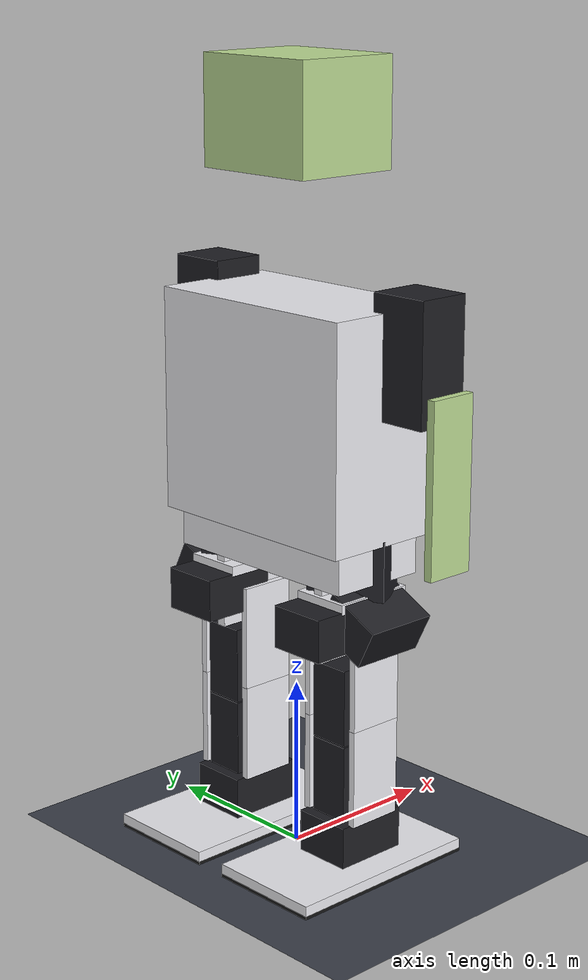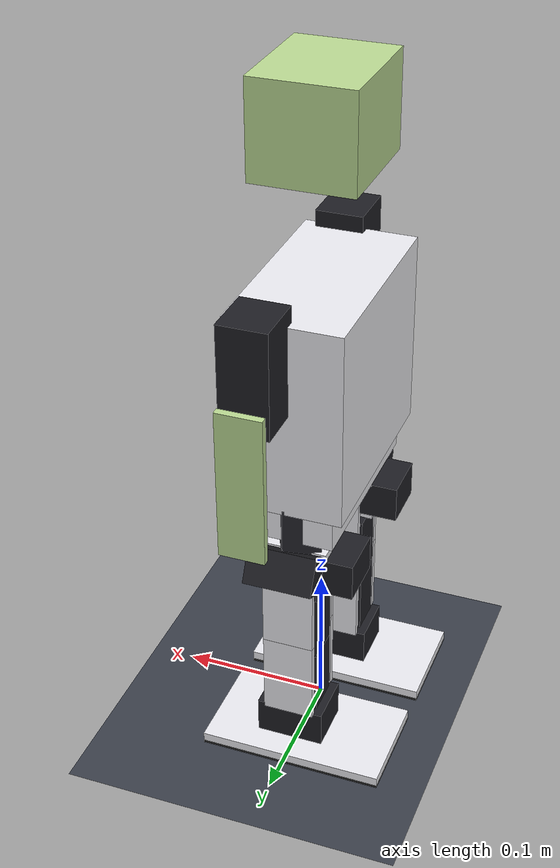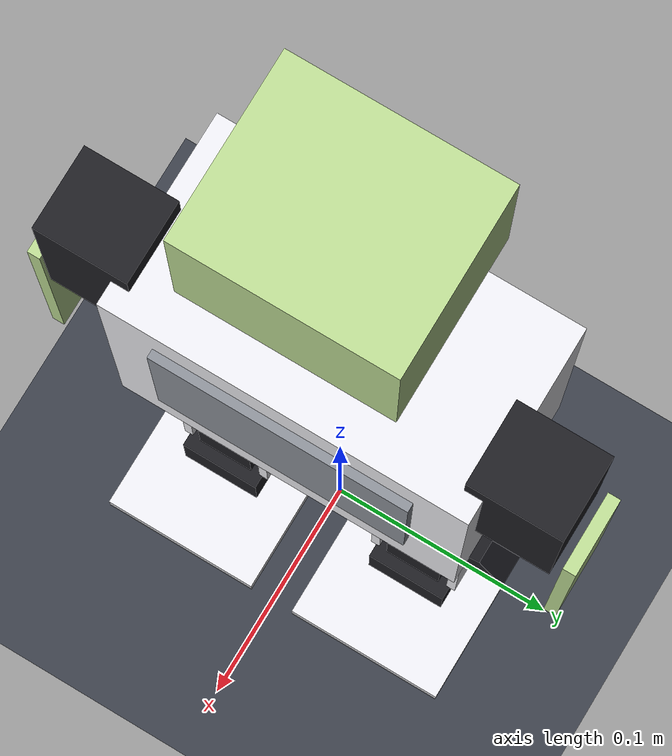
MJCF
<mujoco model="jx0">
  <compiler angle="radian" autolimits="true"/>
  <option timestep="0.001" gravity="0 0 -9.81" integrator="implicitfast"/>
  <visual><global offwidth="1920" offheight="1080"/><quality shadowsize="4096"/><headlight ambient=".35 .35 .38" diffuse=".4 .4 .4"/></visual>
  <asset>
    <texture name="grid" type="2d" builtin="checker" rgb1=".2 .22 .26" rgb2=".26 .28 .32" width="512" height="512"/>
    <material name="grid" texture="grid" texrepeat="8 8" reflectance=".15"/>

  </asset>
  <worldbody>
    <geom name="floor" type="plane" size="6 6 0.1" material="grid" friction="0.9 0.02 0.001"/>
    <light pos="0.5 -0.5 2" dir="-0.2 0.2 -1" diffuse=".7 .7 .7" castshadow="true"/>
    <body name="pelvis" pos="0 0 0.15500">
      <freejoint name="root"/>
      <inertial pos="0.000198198 0 0.0500667" mass="0.222" diaginertia="0.000463614 5.63578e-05 0.000453657"/>
      <geom type="box" size="0.03 0.065 0.012" pos="0 0 0.034" rgba=".93 .93 .95 1" contype="0" conaffinity="0"/><geom type="box" size="0.0226 0.01235 0.0175" pos="0 0.045 0.03" euler="0 0 90" rgba=".12 .12 .14 1" contype="0" conaffinity="0"/><geom type="box" size="0.0226 0.01235 0.0175" pos="0 -0.045 0.03" euler="0 0 90" rgba=".12 .12 .14 1" contype="0" conaffinity="0"/>
      <site name="imu" pos="0 0 0.03" size="0.005" group="4"/>
      <body name="torso" pos="0 0 0">
        <inertial pos="0.005 0 0.143" mass="0.6670" diaginertia="0.00382969 0.00257907 0.00196209"/>
        <geom type="box" size="0.0375 0.07 0.065" pos="0 0 0.11" rgba=".93 .93 .95 1" contype="0" conaffinity="0"/><geom type="box" size="0.002 0.05 0.035" pos="0.039 0 0.12" rgba=".55 .57 .6 1" contype="0" conaffinity="0"/>
        <body name="l_upper_arm" pos="0.0125 0.063 0.186">
  <inertial pos="0.0064 0.0198 -0.0326" mass="0.205" diaginertia="1.1e-4 1.3e-4 7e-5"/>
  <joint name="l_shoulder_pitch" axis="0 1 0" range="-3.1416 1.0472" damping="0.01" armature="0.005"/>
  <geom type="box" size="0.016 0.018 0.035" pos="0 0.018 -0.035" rgba=".12 .12 .14 1" contype="0" conaffinity="0"/>
  <body name="l_forearm" pos="0 0.03925 -0.052">
    <inertial pos="0.0008 0.0032 -0.0382" mass="0.016" diaginertia="1.5e-5 1.5e-5 1.5e-6"/>
    <joint name="l_elbow" axis="0 1 0" range="-2.2689 0.5236" damping="0.01" armature="0.005"/>
    <geom type="box" size="0.015 0.0025 0.05" pos="0 0.0025 -0.05" rgba=".74 .86 .58 1" contype="0" conaffinity="0"/>
    <site name="l_hand" pos="0 0 -0.095" size="0.005" group="4"/>
  </body>
</body>
        <body name="r_upper_arm" pos="0.0125 -0.063 0.186">
  <inertial pos="0.0064 -0.0198 -0.0326" mass="0.205" diaginertia="1.1e-4 1.3e-4 7e-5"/>
  <joint name="r_shoulder_pitch" axis="0 1 0" range="-3.1416 1.0472" damping="0.01" armature="0.005"/>
  <geom type="box" size="0.016 0.018 0.035" pos="0 -0.018 -0.035" rgba=".12 .12 .14 1" contype="0" conaffinity="0"/>
  <body name="r_forearm" pos="0 -0.03925 -0.052">
    <inertial pos="0.0008 -0.0032 -0.0382" mass="0.016" diaginertia="1.5e-5 1.5e-5 1.5e-6"/>
    <joint name="r_elbow" axis="0 1 0" range="-2.2689 0.5236" damping="0.01" armature="0.005"/>
    <geom type="box" size="0.015 0.0025 0.05" pos="0 -0.0025 -0.05" rgba=".74 .86 .58 1" contype="0" conaffinity="0"/>
    <site name="r_hand" pos="0 0 -0.095" size="0.005" group="4"/>
  </body>
</body>
        <body name="head" pos="0 0 0.244625">
          <inertial pos="0 0 0.031" mass="0.073" diaginertia="4e-5 4e-5 4e-5"/>
          <joint name="neck_yaw" axis="0 0 1" range="-1.3963 1.3963" damping="0.01" armature="0.0005"/>
          <geom type="box" size="0.033 0.039 0.031" pos="0 0 0.031" rgba=".74 .86 .58 1" contype="0" conaffinity="0"/>
        </body>
      </body>
      <body name="l_hip_yaw_link" pos="0 0.045 0">
<inertial pos="-0.0318865 -0.0120045 0.00218018" mass="0.111" diaginertia="2.33894e-05 3.37292e-05 3.3355e-05"/>
<joint name="l_hip_yaw" axis="0 0 1" range="-0.523599 0.523599" armature="0.005" damping="0.01"/>
<geom type="box" size="0.025 0.0175 0.003" pos="0 0 0.012" rgba=".93 .93 .95 1" contype="0" conaffinity="0"/>
<geom type="box" size="0.0226 0.0175 0.01235" pos="-0.02 0 -0.002" rgba=".12 .12 .14 1" contype="0" conaffinity="0"/>
<body name="l_hip_roll_link" pos="0 0 0">
<inertial pos="0.00924537 0.000175926 0.000175926" mass="0.108" diaginertia="2.7762e-05 2.66421e-05 3.68656e-05"/>
<joint name="l_hip_roll" axis="1 0 0" range="-0.349066 0.698132" armature="0.005" damping="0.01"/>
<geom type="box" size="0.0225 0.003 0.025" pos="0 -0.004 0" rgba=".93 .93 .95 1" contype="0" conaffinity="0"/>
<geom type="box" size="0.0226 0.01235 0.0175" pos="0 0.018 0" euler="90 0 0" rgba=".12 .12 .14 1" contype="0" conaffinity="0"/>
<body name="l_thigh" pos="0 0 0">
<inertial pos="0.0123803 -0.000478632 -0.0584103" mass="0.117" diaginertia="4.04047e-05 3.32284e-05 3.24817e-05"/>
<joint name="l_hip_pitch" axis="0 1 0" range="-1.745329 0.523599" armature="0.005" damping="0.01"/>
<geom type="box" size="0.017 0.002 0.031" pos="0 0.018 -0.031" rgba=".93 .93 .95 1" contype="0" conaffinity="0"/>
<geom type="box" size="0.017 0.002 0.031" pos="0 -0.018 -0.031" rgba=".93 .93 .95 1" contype="0" conaffinity="0"/>
<geom type="box" size="0.0175 0.01235 0.0226" pos="0 0 -0.05" rgba=".12 .12 .14 1" contype="0" conaffinity="0"/>
<body name="l_shin" pos="0 0 -0.062">
<inertial pos="0.000271845 -0.000543689 -0.0428495" mass="0.103" diaginertia="3.29135e-05 2.36303e-05 2.58664e-05"/>
<joint name="l_knee" axis="0 1 0" range="0.000000 2.094395" armature="0.005" damping="0.01"/>
<geom type="box" size="0.017 0.002 0.029" pos="0 0.018 -0.029" rgba=".93 .93 .95 1" contype="0" conaffinity="0"/>
<geom type="box" size="0.017 0.002 0.029" pos="0 -0.018 -0.029" rgba=".93 .93 .95 1" contype="0" conaffinity="0"/>
<geom type="box" size="0.0175 0.01235 0.0226" pos="0 0 -0.034" rgba=".12 .12 .14 1" contype="0" conaffinity="0"/>
<body name="l_ankle_cross" pos="0 0 -0.058">
<inertial pos="-0.0397019 -0.0116179 0.000160377" mass="0.106" diaginertia="1.93513e-05 3.09718e-05 3.31955e-05"/>
<joint name="l_ankle_pitch" axis="0 1 0" range="-0.959931 0.261799" armature="0.005" damping="0.01"/>
<geom type="box" size="0.0226 0.0175 0.01235" pos="0 0 -0.012" rgba=".12 .12 .14 1" contype="0" conaffinity="0"/>
<body name="l_foot" pos="0 0 0">
<inertial pos="-0.013 0 -0.027" mass="0.044" diaginertia="2.12667e-05 5.96787e-05 7.43453e-05"/>
<joint name="l_ankle_roll" axis="1 0 0" range="-0.349066 0.349066" armature="0.005" damping="0.01"/>
<geom type="box" size="0.062 0.035 0.003" pos="-0.006 0 -0.028" rgba=".93 .93 .95 1" contype="0" conaffinity="0"/>
<geom name="l_foot_geom" type="box" size="0.062 0.035 0.001" pos="-0.006 0 -0.032" rgba=".08 .08 .08 1"/>
<site name="l_sole" pos="0 0 -0.033" size="0.005" group="4"/>
</body></body></body></body></body></body>
      <body name="r_hip_yaw_link" pos="0 -0.045 0">
<inertial pos="-0.0318865 0.0120045 0.00218018" mass="0.111" diaginertia="2.33894e-05 3.37292e-05 3.3355e-05"/>
<joint name="r_hip_yaw" axis="0 0 1" range="-0.523599 0.523599" armature="0.005" damping="0.01"/>
<geom type="box" size="0.025 0.0175 0.003" pos="0 0 0.012" rgba=".93 .93 .95 1" contype="0" conaffinity="0"/>
<geom type="box" size="0.0226 0.0175 0.01235" pos="-0.02 0 -0.002" rgba=".12 .12 .14 1" contype="0" conaffinity="0"/>
<body name="r_hip_roll_link" pos="0 0 0">
<inertial pos="0.00924537 -0.000175926 0.000175926" mass="0.108" diaginertia="2.7762e-05 2.66421e-05 3.68656e-05"/>
<joint name="r_hip_roll" axis="1 0 0" range="-0.698132 0.349066" armature="0.005" damping="0.01"/>
<geom type="box" size="0.0225 0.003 0.025" pos="0 0.004 0" rgba=".93 .93 .95 1" contype="0" conaffinity="0"/>
<geom type="box" size="0.0226 0.01235 0.0175" pos="0 -0.018 0" euler="90 0 0" rgba=".12 .12 .14 1" contype="0" conaffinity="0"/>
<body name="r_thigh" pos="0 0 0">
<inertial pos="0.0123803 0.000478632 -0.0584103" mass="0.117" diaginertia="4.04047e-05 3.32284e-05 3.24817e-05"/>
<joint name="r_hip_pitch" axis="0 1 0" range="-1.745329 0.523599" armature="0.005" damping="0.01"/>
<geom type="box" size="0.017 0.002 0.031" pos="0 0.018 -0.031" rgba=".93 .93 .95 1" contype="0" conaffinity="0"/>
<geom type="box" size="0.017 0.002 0.031" pos="0 -0.018 -0.031" rgba=".93 .93 .95 1" contype="0" conaffinity="0"/>
<geom type="box" size="0.0175 0.01235 0.0226" pos="0 0 -0.05" rgba=".12 .12 .14 1" contype="0" conaffinity="0"/>
<body name="r_shin" pos="0 0 -0.062">
<inertial pos="0.000271845 0.000543689 -0.0428495" mass="0.103" diaginertia="3.29135e-05 2.36303e-05 2.58664e-05"/>
<joint name="r_knee" axis="0 1 0" range="0.000000 2.094395" armature="0.005" damping="0.01"/>
<geom type="box" size="0.017 0.002 0.029" pos="0 0.018 -0.029" rgba=".93 .93 .95 1" contype="0" conaffinity="0"/>
<geom type="box" size="0.017 0.002 0.029" pos="0 -0.018 -0.029" rgba=".93 .93 .95 1" contype="0" conaffinity="0"/>
<geom type="box" size="0.0175 0.01235 0.0226" pos="0 0 -0.034" rgba=".12 .12 .14 1" contype="0" conaffinity="0"/>
<body name="r_ankle_cross" pos="0 0 -0.058">
<inertial pos="-0.0397019 0.0116179 0.000160377" mass="0.106" diaginertia="1.93513e-05 3.09718e-05 3.31955e-05"/>
<joint name="r_ankle_pitch" axis="0 1 0" range="-0.959931 0.261799" armature="0.005" damping="0.01"/>
<geom type="box" size="0.0226 0.0175 0.01235" pos="0 0 -0.012" rgba=".12 .12 .14 1" contype="0" conaffinity="0"/>
<body name="r_foot" pos="0 0 0">
<inertial pos="-0.013 -0 -0.027" mass="0.044" diaginertia="2.12667e-05 5.96787e-05 7.43453e-05"/>
<joint name="r_ankle_roll" axis="1 0 0" range="-0.349066 0.349066" armature="0.005" damping="0.01"/>
<geom type="box" size="0.062 0.035 0.003" pos="-0.006 0 -0.028" rgba=".93 .93 .95 1" contype="0" conaffinity="0"/>
<geom name="r_foot_geom" type="box" size="0.062 0.035 0.001" pos="-0.006 0 -0.032" rgba=".08 .08 .08 1"/>
<site name="r_sole" pos="0 0 -0.033" size="0.005" group="4"/>
</body></body></body></body></body></body>
    </body>
  </worldbody>
  <actuator>
    <motor name="l_hip_yaw" joint="l_hip_yaw" ctrlrange="-5 5"/>
<motor name="l_hip_roll" joint="l_hip_roll" ctrlrange="-5 5"/>
<motor name="l_hip_pitch" joint="l_hip_pitch" ctrlrange="-5 5"/>
<motor name="l_knee" joint="l_knee" ctrlrange="-5 5"/>
<motor name="l_ankle_pitch" joint="l_ankle_pitch" ctrlrange="-5 5"/>
<motor name="l_ankle_roll" joint="l_ankle_roll" ctrlrange="-5 5"/>
<motor name="r_hip_yaw" joint="r_hip_yaw" ctrlrange="-5 5"/>
<motor name="r_hip_roll" joint="r_hip_roll" ctrlrange="-5 5"/>
<motor name="r_hip_pitch" joint="r_hip_pitch" ctrlrange="-5 5"/>
<motor name="r_knee" joint="r_knee" ctrlrange="-5 5"/>
<motor name="r_ankle_pitch" joint="r_ankle_pitch" ctrlrange="-5 5"/>
<motor name="r_ankle_roll" joint="r_ankle_roll" ctrlrange="-5 5"/>
<motor name="l_shoulder_pitch" joint="l_shoulder_pitch" ctrlrange="-5 5"/>
<motor name="l_elbow" joint="l_elbow" ctrlrange="-5 5"/>
<motor name="r_shoulder_pitch" joint="r_shoulder_pitch" ctrlrange="-5 5"/>
<motor name="r_elbow" joint="r_elbow" ctrlrange="-5 5"/>
<motor name="neck_yaw" joint="neck_yaw" ctrlrange="-5 5"/>
  </actuator>
  <sensor>
    <framequat name="imu_quat" objtype="site" objname="imu"/>
    <gyro name="imu_gyro" site="imu"/>
    <accelerometer name="imu_acc" site="imu"/>
  </sensor>
</mujoco>
